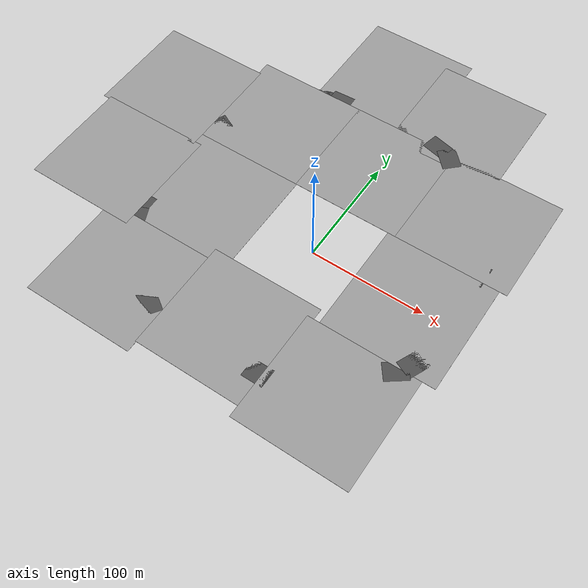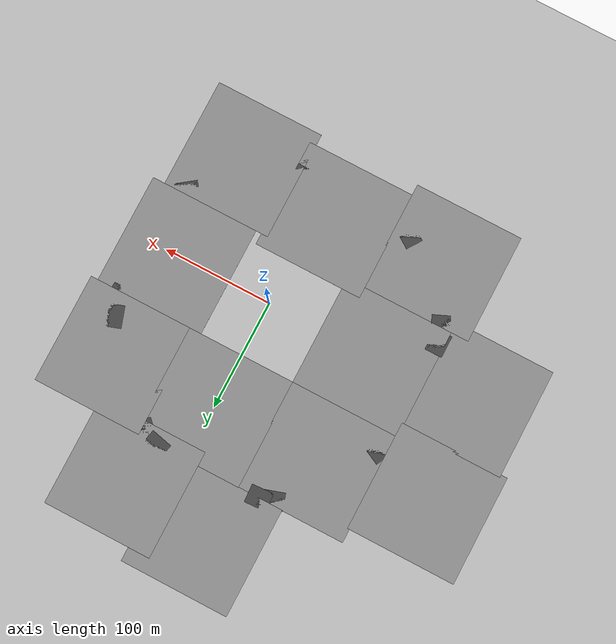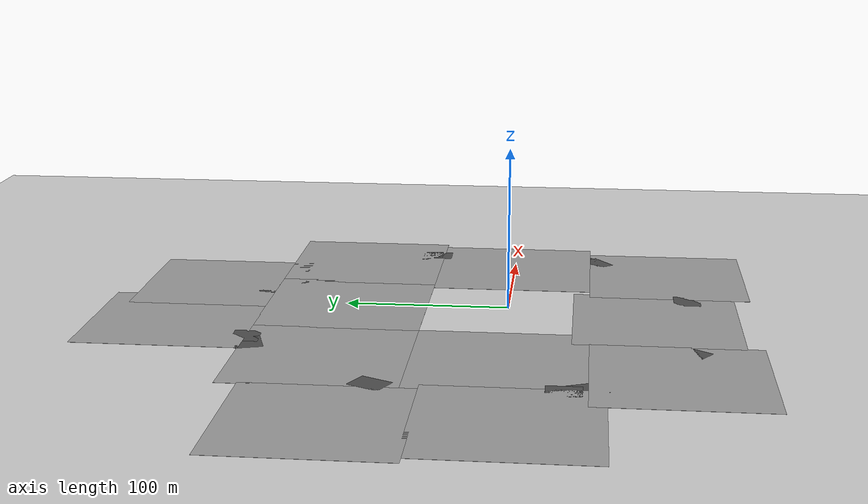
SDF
<sdf version="1.5">
 <world name="default">
  <light name="sun" type="directional">
   <pose>28.5083 10.2616 10 0 -0 0</pose>
   <diffuse>0.8 0.8 0.8 1</diffuse>
   <specular>0.2 0.2 0.2 1</specular>
   <attenuation>
    <range>1000</range>
    <constant>0.9</constant>
    <linear>0.01</linear>
    <quadratic>0.001</quadratic>
   </attenuation>
   <direction>-0.5 0.1 -0.9</direction>
  </light>
  <model name="ground_plane">
   <static>1</static>
   <link name="link">
    <collision name="collision">
     <geometry><plane><normal>0 0 1</normal><size>100 100</size></plane></geometry>
     <surface>
      <contact><collide_bitmask>65535</collide_bitmask></contact>
      <friction><ode><mu>100</mu><mu2>50</mu2></ode></friction>
     </surface>
    </collision>
    <visual name="visual">
     <cast_shadows>0</cast_shadows>
     <geometry><plane><normal>0 0 1</normal><size>100 100</size></plane></geometry>
     <material>
      <script><uri>file://media/materials/scripts/gazebo.material</uri><name>Gazebo/Grey</name></script>
     </material>
    </visual>
   </link>
  </model>
  <physics name="default_physics" default="0" type="ode">
   <max_step_size>0.001</max_step_size>
   <real_time_factor>1</real_time_factor>
   <real_time_update_rate>1000</real_time_update_rate>
   <gravity>0 0 -9.8</gravity>
   <magnetic_field>6e-06 2.3e-05 -4.2e-05</magnetic_field>
  </physics>
  <scene><ambient>0.4 0.4 0.4 1</ambient><background>0.7 0.7 0.7 1</background><shadows>1</shadows></scene>
  <audio><device>default</device></audio>
  <spherical_coordinates>
   <surface_model>EARTH_WGS84</surface_model>
   <latitude_deg>0</latitude_deg>
   <longitude_deg>0</longitude_deg>
   <elevation>0</elevation>
   <heading_deg>0</heading_deg>
  </spherical_coordinates>
  <model name="ground_plane_0">
   <static>1</static>
   <link name="link">
    <collision name="collision">
     <geometry><plane><normal>0 0 1</normal><size>100 100</size></plane></geometry>
     <surface>
      <contact><collide_bitmask>65535</collide_bitmask></contact>
      <friction><ode><mu>100</mu><mu2>50</mu2></ode></friction>
     </surface>
    </collision>
    <visual name="visual">
     <cast_shadows>0</cast_shadows>
     <geometry><plane><normal>0 0 1</normal><size>100 100</size></plane></geometry>
     <material>
      <script><uri>file://media/materials/scripts/gazebo.material</uri><name>Gazebo/Grey</name></script>
     </material>
    </visual>
   </link>
   <pose>-99 0 0 0 -0 0</pose>
  </model>
  <model name="ground_plane_0_0">
   <static>1</static>
   <link name="link">
    <collision name="collision">
     <geometry><plane><normal>0 0 1</normal><size>100 100</size></plane></geometry>
     <surface>
      <contact><collide_bitmask>65535</collide_bitmask></contact>
      <friction><ode><mu>100</mu><mu2>50</mu2></ode></friction>
     </surface>
    </collision>
    <visual name="visual">
     <cast_shadows>0</cast_shadows>
     <geometry><plane><normal>0 0 1</normal><size>100 100</size></plane></geometry>
     <material>
      <script><uri>file://media/materials/scripts/gazebo.material</uri><name>Gazebo/Grey</name></script>
     </material>
    </visual>
   </link>
   <pose>-16 -90 0 0 -0 0</pose>
  </model>
  <model name="ground_plane_1">
   <static>1</static>
   <link name="link">
    <collision name="collision">
     <geometry><plane><normal>0 0 1</normal><size>100 100</size></plane></geometry>
     <surface>
      <contact><collide_bitmask>65535</collide_bitmask></contact>
      <friction><ode><mu>100</mu><mu2>50</mu2></ode></friction>
     </surface>
    </collision>
    <visual name="visual">
     <cast_shadows>0</cast_shadows>
     <geometry><plane><normal>0 0 1</normal><size>100 100</size></plane></geometry>
     <material>
      <script><uri>file://media/materials/scripts/gazebo.material</uri><name>Gazebo/Grey</name></script>
     </material>
    </visual>
   </link>
   <pose>-115 -100 0 0 -0 0</pose>
  </model>
  <model name="ground_plane_2">
   <static>1</static>
   <link name="link">
    <collision name="collision">
     <geometry><plane><normal>0 0 1</normal><size>100 100</size></plane></geometry>
     <surface>
      <contact><collide_bitmask>65535</collide_bitmask></contact>
      <friction><ode><mu>100</mu><mu2>50</mu2></ode></friction>
     </surface>
    </collision>
    <visual name="visual">
     <cast_shadows>0</cast_shadows>
     <geometry><plane><normal>0 0 1</normal><size>100 100</size></plane></geometry>
     <material>
      <script><uri>file://media/materials/scripts/gazebo.material</uri><name>Gazebo/Grey</name></script>
     </material>
    </visual>
   </link>
   <pose>-99 100 0 0 -0 0</pose>
  </model>
  <model name="ground_plane_3">
   <static>1</static>
   <link name="link">
    <collision name="collision">
     <geometry><plane><normal>0 0 1</normal><size>100 100</size></plane></geometry>
     <surface>
      <contact><collide_bitmask>65535</collide_bitmask></contact>
      <friction><ode><mu>100</mu><mu2>50</mu2></ode></friction>
     </surface>
    </collision>
    <visual name="visual">
     <cast_shadows>0</cast_shadows>
     <geometry><plane><normal>0 0 1</normal><size>100 100</size></plane></geometry>
     <material>
      <script><uri>file://media/materials/scripts/gazebo.material</uri><name>Gazebo/Grey</name></script>
     </material>
    </visual>
   </link>
   <pose>0 100 0 0 -0 0</pose>
  </model>
  <model name="ground_plane_4">
   <static>1</static>
   <link name="link">
    <collision name="collision">
     <geometry><plane><normal>0 0 1</normal><size>100 100</size></plane></geometry>
     <surface>
      <contact><collide_bitmask>65535</collide_bitmask></contact>
      <friction><ode><mu>100</mu><mu2>50</mu2></ode></friction>
     </surface>
    </collision>
    <visual name="visual">
     <cast_shadows>0</cast_shadows>
     <geometry><plane><normal>0 0 1</normal><size>100 100</size></plane></geometry>
     <material>
      <script><uri>file://media/materials/scripts/gazebo.material</uri><name>Gazebo/Grey</name></script>
     </material>
    </visual>
   </link>
   <pose>89 0 0 0 -0 0</pose>
  </model>
  <model name="ground_plane_5">
   <static>1</static>
   <link name="link">
    <collision name="collision">
     <geometry><plane><normal>0 0 1</normal><size>100 100</size></plane></geometry>
     <surface>
      <contact><collide_bitmask>65535</collide_bitmask></contact>
      <friction><ode><mu>100</mu><mu2>50</mu2></ode></friction>
     </surface>
    </collision>
    <visual name="visual">
     <cast_shadows>0</cast_shadows>
     <geometry><plane><normal>0 0 1</normal><size>100 100</size></plane></geometry>
     <material>
      <script><uri>file://media/materials/scripts/gazebo.material</uri><name>Gazebo/Grey</name></script>
     </material>
    </visual>
   </link>
   <pose>78 -100 0 0 -0 0</pose>
  </model>
  <model name="ground_plane_6">
   <static>1</static>
   <link name="link">
    <collision name="collision">
     <geometry><plane><normal>0 0 1</normal><size>100 100</size></plane></geometry>
     <surface>
      <contact><collide_bitmask>65535</collide_bitmask></contact>
      <friction><ode><mu>100</mu><mu2>50</mu2></ode></friction>
     </surface>
    </collision>
    <visual name="visual">
     <cast_shadows>0</cast_shadows>
     <geometry><plane><normal>0 0 1</normal><size>100 100</size></plane></geometry>
     <material>
      <script><uri>file://media/materials/scripts/gazebo.material</uri><name>Gazebo/Grey</name></script>
     </material>
    </visual>
   </link>
   <pose>95.4902 100 0 0 -0 0</pose>
  </model>
  <model name="comps_road">
   <static>1</static>
   <link name="link">
    <collision name="collision"><geometry><box><size>90 10 0.05</size></box></geometry></collision>
    <visual name="visual">
     <cast_shadows>0</cast_shadows>
     <geometry><box><size>90 10 0.05</size></box></geometry>
     <material>
      <script>
       <uri>model://comps_road/materials/scripts</uri>
       <uri>model://comps_road/materials/textures</uri>
       <name>comps_road</name>
      </script>
     </material>
    </visual>
   </link>
   <pose>-29.1935 -113.514 0 0 -0 0</pose>
  </model>
  <model name="comps_road_1">
   <static>1</static>
   <link name="link">
    <collision name="collision"><geometry><box><size>90 10 0.05</size></box></geometry></collision>
    <visual name="visual">
     <cast_shadows>0</cast_shadows>
     <geometry><box><size>90 10 0.05</size></box></geometry>
     <material>
      <script>
       <uri>model://comps_road/materials/scripts</uri>
       <uri>model://comps_road/materials/textures</uri>
       <name>comps_road</name>
      </script>
     </material>
    </visual>
   </link>
   <pose>119.955 3.57178 0 0 -0 1.56431</pose>
  </model>
  <model name="comps_road_2">
   <static>1</static>
   <link name="link">
    <collision name="collision"><geometry><box><size>90 10 0.05</size></box></geometry></collision>
    <visual name="visual">
     <cast_shadows>0</cast_shadows>
     <geometry><box><size>90 10 0.05</size></box></geometry>
     <material>
      <script>
       <uri>model://comps_road/materials/scripts</uri>
       <uri>model://comps_road/materials/textures</uri>
       <name>comps_road</name>
      </script>
     </material>
    </visual>
   </link>
   <pose>-146.049 15.0021 0 0 0 -1.57337</pose>
  </model>
  <model name="comps_road_4">
   <static>1</static>
   <link name="link">
    <collision name="collision"><geometry><box><size>90 10 0.05</size></box></geometry></collision>
    <visual name="visual">
     <cast_shadows>0</cast_shadows>
     <geometry><box><size>90 10 0.05</size></box></geometry>
     <material>
      <script>
       <uri>model://comps_road/materials/scripts</uri>
       <uri>model://comps_road/materials/textures</uri>
       <name>comps_road</name>
      </script>
     </material>
    </visual>
   </link>
   <pose>67.6387 -86.1658 0 0 -0 0.632112</pose>
  </model>
  <model name="curved_road_3_0">
   <static>1</static>
   <link name="link">
    <collision name="collision"><geometry><box><size>18.6673 16.5019 0.1</size></box></geometry></collision>
    <visual name="visual">
     <cast_shadows>0</cast_shadows>
     <geometry><box><size>18.6673 16.5019 0.1</size></box></geometry>
     <material>
      <script>
       <uri>model://curved_road_3/materials/scripts</uri>
       <uri>model://curved_road_3/materials/textures</uri>
       <name>curved_road_3</name>
      </script>
     </material>
    </visual>
   </link>
   <pose>24.779 -110.663 0 0 -0 0</pose>
  </model>
  <model name="comps_road_5">
   <static>1</static>
   <link name="link">
    <collision name="collision"><geometry><box><size>90 10 0.05</size></box></geometry></collision>
    <visual name="visual">
     <cast_shadows>0</cast_shadows>
     <geometry><box><size>90 10 0.05</size></box></geometry>
     <material>
      <script>
       <uri>model://comps_road/materials/scripts</uri>
       <uri>model://comps_road/materials/textures</uri>
       <name>comps_road</name>
      </script>
     </material>
    </visual>
   </link>
   <pose>80.5121 110.141 0 0 0 -0.795539</pose>
  </model>
  <model name="comps_road_6">
   <static>1</static>
   <link name="link">
    <collision name="collision"><geometry><box><size>90 10 0.05</size></box></geometry></collision>
    <visual name="visual">
     <cast_shadows>0</cast_shadows>
     <geometry><box><size>90 10 0.05</size></box></geometry>
     <material>
      <script>
       <uri>model://comps_road/materials/scripts</uri>
       <uri>model://comps_road/materials/textures</uri>
       <name>comps_road</name>
      </script>
     </material>
    </visual>
   </link>
   <pose>-107.071 -86.0854 0 0 0 -0.776538</pose>
  </model>
  <model name="comps_road_7">
   <static>1</static>
   <link name="link">
    <collision name="collision"><geometry><box><size>90 10 0.05</size></box></geometry></collision>
    <visual name="visual">
     <cast_shadows>0</cast_shadows>
     <geometry><box><size>90 10 0.05</size></box></geometry>
     <material>
      <script>
       <uri>model://comps_road/materials/scripts</uri>
       <uri>model://comps_road/materials/textures</uri>
       <name>comps_road</name>
      </script>
     </material>
    </visual>
   </link>
   <pose>-114.756 109.865 0 0 -0 0.927314</pose>
  </model>
  <model name="curved_road_2_1">
   <static>1</static>
   <link name="link">
    <collision name="collision"><geometry><box><size>20 15.7949 0.1</size></box></geometry></collision>
    <visual name="visual">
     <cast_shadows>0</cast_shadows>
     <geometry><box><size>20 15.7949 0.1</size></box></geometry>
     <material>
      <script>
       <uri>model://curved_road_2/materials/scripts</uri>
       <uri>model://curved_road_2/materials/textures</uri>
       <name>curved_road_2</name>
      </script>
     </material>
    </visual>
   </link>
   <pose>107.63 -53.2858 0 0 -0 0.640509</pose>
  </model>
  <model name="curved_road_2_0_0">
   <static>1</static>
   <link name="link">
    <collision name="collision"><geometry><box><size>20 15.6416 0.1</size></box></geometry></collision>
    <visual name="visual">
     <cast_shadows>0</cast_shadows>
     <geometry><box><size>20 15.6416 0.1</size></box></geometry>
     <material>
      <script>
       <uri>model://curved_road_2/materials/scripts</uri>
       <uri>model://curved_road_2/materials/textures</uri>
       <name>curved_road_2</name>
      </script>
     </material>
    </visual>
   </link>
   <pose>117.308 55.1306 0 0 -0 1.58234</pose>
  </model>
  <model name="curved_road_3_1_0">
   <static>1</static>
   <link name="link">
    <collision name="collision"><geometry><box><size>20 16.1851 0.1</size></box></geometry></collision>
    <visual name="visual">
     <cast_shadows>0</cast_shadows>
     <geometry><box><size>20 16.1851 0.1</size></box></geometry>
     <material>
      <script>
       <uri>model://curved_road_3/materials/scripts</uri>
       <uri>model://curved_road_3/materials/textures</uri>
       <name>curved_road_3</name>
      </script>
     </material>
    </visual>
   </link>
   <pose>42.4087 144.957 0 0 -0 2.33568</pose>
  </model>
  <model name="curved_road_3">
   <static>1</static>
   <link name="link">
    <collision name="collision"><geometry><box><size>20 16.4144 0.1</size></box></geometry></collision>
    <visual name="visual">
     <cast_shadows>0</cast_shadows>
     <geometry><box><size>20 16.4144 0.1</size></box></geometry>
     <material>
      <script>
       <uri>model://curved_road_3/materials/scripts</uri>
       <uri>model://curved_road_3/materials/textures</uri>
       <name>curved_road_3</name>
      </script>
     </material>
    </visual>
   </link>
   <pose>115.632 -40.8804 0 0 -0 1.15673</pose>
  </model>
  <model name="curved_road_2">
   <static>1</static>
   <link name="link">
    <collision name="collision"><geometry><box><size>20 16.6022 0.1</size></box></geometry></collision>
    <visual name="visual">
     <cast_shadows>0</cast_shadows>
     <geometry><box><size>20 16.6022 0.1</size></box></geometry>
     <material>
      <script>
       <uri>model://curved_road_2/materials/scripts</uri>
       <uri>model://curved_road_2/materials/textures</uri>
       <name>curved_road_2</name>
      </script>
     </material>
    </visual>
   </link>
   <pose>112.265 71.0767 0 0 -0 1.89153</pose>
  </model>
  <model name="ground_plane_7">
   <static>1</static>
   <link name="link">
    <collision name="collision">
     <geometry><plane><normal>0 0 1</normal><size>100 100</size></plane></geometry>
     <surface>
      <contact><collide_bitmask>65535</collide_bitmask></contact>
      <friction><ode><mu>100</mu><mu2>50</mu2></ode></friction>
     </surface>
    </collision>
    <visual name="visual">
     <cast_shadows>0</cast_shadows>
     <geometry><plane><normal>0 0 1</normal><size>100 100</size></plane></geometry>
     <material>
      <script><uri>file://media/materials/scripts/gazebo.material</uri><name>Gazebo/Grey</name></script>
     </material>
    </visual>
   </link>
   <pose>38.5655 187 0 0 -0 0</pose>
  </model>
  <model name="ground_plane_0_1">
   <static>1</static>
   <link name="link">
    <collision name="collision">
     <geometry><plane><normal>0 0 1</normal><size>100 100</size></plane></geometry>
     <surface>
      <contact><collide_bitmask>65535</collide_bitmask></contact>
      <friction><ode><mu>100</mu><mu2>50</mu2></ode></friction>
     </surface>
    </collision>
    <visual name="visual">
     <cast_shadows>0</cast_shadows>
     <geometry><plane><normal>0 0 1</normal><size>100 100</size></plane></geometry>
     <material>
      <script><uri>file://media/materials/scripts/gazebo.material</uri><name>Gazebo/Grey</name></script>
     </material>
    </visual>
   </link>
   <pose>-41.4788 199.567 0 0 -0 0</pose>
  </model>
  <model name="comps_road_3">
   <static>1</static>
   <link name="link">
    <collision name="collision"><geometry><box><size>90 10 0.05</size></box></geometry></collision>
    <visual name="visual">
     <cast_shadows>0</cast_shadows>
     <geometry><box><size>90 10 0.05</size></box></geometry>
     <material>
      <script>
       <uri>model://comps_road/materials/scripts</uri>
       <uri>model://comps_road/materials/textures</uri>
       <name>comps_road</name>
      </script>
     </material>
    </visual>
   </link>
   <pose>-19.1626 153 0 0 -0 0</pose>
  </model>
  <model name="curved_road_2_0">
   <static>1</static>
   <link name="link">
    <collision name="collision"><geometry><box><size>20 15.67 0.1</size></box></geometry></collision>
    <visual name="visual">
     <cast_shadows>0</cast_shadows>
     <geometry><box><size>20 15.67 0.1</size></box></geometry>
     <material>
      <script>
       <uri>model://curved_road_2/materials/scripts</uri>
       <uri>model://curved_road_2/materials/textures</uri>
       <name>curved_road_2</name>
      </script>
     </material>
    </visual>
   </link>
   <pose>28.2847 151.001 0 0 -0 2.91261</pose>
  </model>
  <model name="curved_road_2_0_1">
   <static>1</static>
   <link name="link">
    <collision name="collision"><geometry><box><size>20 16.4815 0.1</size></box></geometry></collision>
    <visual name="visual">
     <cast_shadows>0</cast_shadows>
     <geometry><box><size>20 16.4815 0.1</size></box></geometry>
     <material>
      <script>
       <uri>model://curved_road_2/materials/scripts</uri>
       <uri>model://curved_road_2/materials/textures</uri>
       <name>curved_road_2</name>
      </script>
     </material>
    </visual>
   </link>
   <pose>-69.3153 149.454 0 0 0 -3.0886</pose>
  </model>
  <model name="curved_road_2_1_0">
   <static>1</static>
   <link name="link">
    <collision name="collision"><geometry><box><size>20 15.9255 0.1</size></box></geometry></collision>
    <visual name="visual">
     <cast_shadows>0</cast_shadows>
     <geometry><box><size>20 15.9255 0.1</size></box></geometry>
     <material>
      <script>
       <uri>model://curved_road_2/materials/scripts</uri>
       <uri>model://curved_road_2/materials/textures</uri>
       <name>curved_road_2</name>
      </script>
     </material>
    </visual>
   </link>
   <pose>-80.484 146.011 0 0 0 -2.83357</pose>
  </model>
  <model name="curved_road_2_2">
   <static>1</static>
   <link name="link">
    <collision name="collision"><geometry><box><size>20 15.4434 0.1</size></box></geometry></collision>
    <visual name="visual">
     <cast_shadows>0</cast_shadows>
     <geometry><box><size>20 15.4434 0.1</size></box></geometry>
     <material>
      <script>
       <uri>model://curved_road_2/materials/scripts</uri>
       <uri>model://curved_road_2/materials/textures</uri>
       <name>curved_road_2</name>
      </script>
     </material>
    </visual>
   </link>
   <pose>-141.641 66.3748 0 0 0 -2.02799</pose>
  </model>
  <model name="curved_road_2_3">
   <static>1</static>
   <link name="link">
    <collision name="collision"><geometry><box><size>20 15.9385 0.1</size></box></geometry></collision>
    <visual name="visual">
     <cast_shadows>0</cast_shadows>
     <geometry><box><size>20 15.9385 0.1</size></box></geometry>
     <material>
      <script>
       <uri>model://curved_road_2/materials/scripts</uri>
       <uri>model://curved_road_2/materials/textures</uri>
       <name>curved_road_2</name>
      </script>
     </material>
    </visual>
   </link>
   <pose>-143.329 -37.1045 0 0 0 -1.56995</pose>
  </model>
  <model name="curved_road_2_4">
   <static>1</static>
   <link name="link">
    <collision name="collision"><geometry><box><size>20 16.234 0.1</size></box></geometry></collision>
    <visual name="visual">
     <cast_shadows>0</cast_shadows>
     <geometry><box><size>20 16.234 0.1</size></box></geometry>
     <material>
      <script>
       <uri>model://curved_road_2/materials/scripts</uri>
       <uri>model://curved_road_2/materials/textures</uri>
       <name>curved_road_2</name>
      </script>
     </material>
    </visual>
   </link>
   <pose>-138.538 -50.2449 0 0 0 -1.16899</pose>
  </model>
  <model name="curved_road_2_5">
   <static>1</static>
   <link name="link">
    <collision name="collision"><geometry><box><size>20 15.5976 0.1</size></box></geometry></collision>
    <visual name="visual">
     <cast_shadows>0</cast_shadows>
     <geometry><box><size>20 15.5976 0.1</size></box></geometry>
     <material>
      <script>
       <uri>model://curved_road_2/materials/scripts</uri>
       <uri>model://curved_road_2/materials/textures</uri>
       <name>curved_road_2</name>
      </script>
     </material>
    </visual>
   </link>
   <pose>-78.3955 -108.058 0 0 0 -0.601425</pose>
  </model>
  <model name="ground_plane_8">
   <static>1</static>
   <link name="link">
    <collision name="collision">
     <geometry><plane><normal>0 0 1</normal><size>100 100</size></plane></geometry>
     <surface>
      <contact><collide_bitmask>65535</collide_bitmask></contact>
      <friction><ode><mu>100</mu><mu2>50</mu2></ode></friction>
     </surface>
    </collision>
    <visual name="visual">
     <cast_shadows>0</cast_shadows>
     <geometry><plane><normal>0 0 1</normal><size>100 100</size></plane></geometry>
     <material>
      <script><uri>file://media/materials/scripts/gazebo.material</uri><name>Gazebo/Grey</name></script>
     </material>
    </visual>
   </link>
   <pose>-191 -10 0 0 -0 0</pose>
  </model>
  <model name="ground_plane_0_2">
   <static>1</static>
   <link name="link">
    <collision name="collision">
     <geometry><plane><normal>0 0 1</normal><size>100 100</size></plane></geometry>
     <surface>
      <contact><collide_bitmask>65535</collide_bitmask></contact>
      <friction><ode><mu>100</mu><mu2>50</mu2></ode></friction>
     </surface>
    </collision>
    <visual name="visual">
     <cast_shadows>0</cast_shadows>
     <geometry><plane><normal>0 0 1</normal><size>100 100</size></plane></geometry>
     <material>
      <script><uri>file://media/materials/scripts/gazebo.material</uri><name>Gazebo/Grey</name></script>
     </material>
    </visual>
   </link>
   <pose>-197 87.442 0 0 -0 0</pose>
  </model>
 </world>
</sdf>
